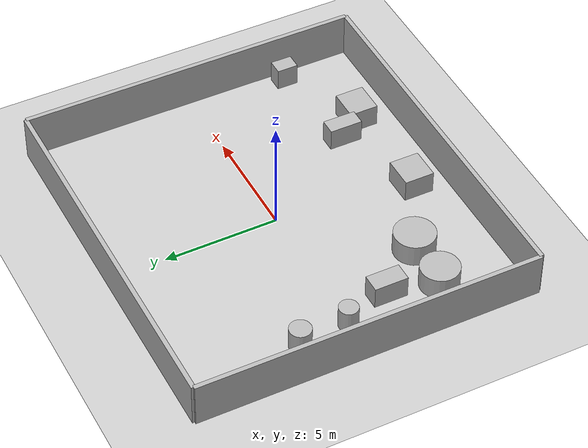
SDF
<?xml version="1.0"?>
<sdf version="1.6">
  <world name="env_45">

    <include><uri>model://ground_plane</uri></include>
    <include><uri>model://sun</uri></include>

    <!-- WALLS -->
    <model name="wall_north"><static>true</static><pose>0 7.544668721564007 1 0 0 0</pose>
      <link name="link"><collision name="collision">
        <geometry><box><size>16.422238055120904 0.2 2</size></box></geometry>
      </collision><visual name="visual">
        <geometry><box><size>16.422238055120904 0.2 2</size></box></geometry>
      </visual></link>
    </model>

    <model name="wall_south"><static>true</static><pose>0 -7.544668721564007 1 0 0 0</pose>
      <link name="link"><collision name="collision">
        <geometry><box><size>16.422238055120904 0.2 2</size></box></geometry>
      </collision><visual name="visual">
        <geometry><box><size>16.422238055120904 0.2 2</size></box></geometry>
      </visual></link>
    </model>

    <model name="wall_east"><static>true</static><pose>8.211119027560452 0 1 0 0 1.57</pose>
      <link name="link"><collision name="collision">
        <geometry><box><size>15.089337443128015 0.2 2</size></box></geometry>
      </collision><visual name="visual">
        <geometry><box><size>15.089337443128015 0.2 2</size></box></geometry>
      </visual></link>
    </model>

    <model name="wall_west"><static>true</static><pose>-8.211119027560452 0 1 0 0 1.57</pose>
      <link name="link"><collision name="collision">
        <geometry><box><size>15.089337443128015 0.2 2</size></box></geometry>
      </collision><visual name="visual">
        <geometry><box><size>15.089337443128015 0.2 2</size></box></geometry>
      </visual></link>
    </model>

    <!-- SENSOR -->

    <model name="lidar_sensor">
      <static>true</static>
      <pose>7.453102257823867 -6.813337682431473 0.4 0 0 0</pose>
      <link name="link">
        <sensor name="lidar" type="ray">
          <pose>0 0 0 0 0 0</pose>
          <visualize>true</visualize>
          <always_on>true</always_on>
          <update_rate>10</update_rate>
          <ray>
            <scan><horizontal>
              <samples>240</samples>
              <resolution>1</resolution>
              <min_angle>-3.14159</min_angle>
              <max_angle>3.14159</max_angle>
            </horizontal></scan>
            <range><min>0.15</min><max>20.0</max><resolution>0.01</resolution></range>
          </ray>
          <plugin name="lidar_plugin" filename="liblidar_plugin.so"/>
        </sensor>
      </link>
    </model>

    <!-- OBSTACLES -->

    <model name="obstacle_0">
      <static>true</static>
      <pose>4.016593146539165 -5.884355125289948 0.5 0 0 0</pose>
      <link name="link">
        <collision name="collision">
          <geometry><box><size>1.37 1.27 1.0</size></box></geometry>
        </collision>
        <visual name="visual">
          <geometry><box><size>1.37 1.27 1.0</size></box></geometry>
        </visual>
      </link>
    </model>

    <model name="obstacle_1">
      <static>true</static>
      <pose>-3.9938365729529006 -4.255279312964937 0.5 0 0 0</pose>
      <link name="link">
        <collision name="collision">
          <geometry><cylinder><radius>0.9</radius><length>1.0</length></cylinder></geometry>
        </collision>
        <visual name="visual">
          <geometry><cylinder><radius>0.9</radius><length>1.0</length></cylinder></geometry>
        </visual>
      </link>
    </model>

    <model name="obstacle_2">
      <static>true</static>
      <pose>3.1280410426992997 -4.738663934882918 0.5 0 0 0</pose>
      <link name="link">
        <collision name="collision">
          <geometry><box><size>0.71 1.46 1.0</size></box></geometry>
        </collision>
        <visual name="visual">
          <geometry><box><size>0.71 1.46 1.0</size></box></geometry>
        </visual>
      </link>
    </model>

    <model name="obstacle_3">
      <static>true</static>
      <pose>-0.6669492374493471 -5.969610169986723 0.5 0 0 0</pose>
      <link name="link">
        <collision name="collision">
          <geometry><box><size>1.37 1.31 1.0</size></box></geometry>
        </collision>
        <visual name="visual">
          <geometry><box><size>1.37 1.31 1.0</size></box></geometry>
        </visual>
      </link>
    </model>

    <model name="obstacle_4">
      <static>true</static>
      <pose>-5.690242487939074 -2.0457681071024103 0.5 0 0 0</pose>
      <link name="link">
        <collision name="collision">
          <geometry><box><size>0.81 1.48 1.0</size></box></geometry>
        </collision>
        <visual name="visual">
          <geometry><box><size>0.81 1.48 1.0</size></box></geometry>
        </visual>
      </link>
    </model>

    <model name="obstacle_5">
      <static>true</static>
      <pose>-6.09600889858022 -4.227108948711534 0.5 0 0 0</pose>
      <link name="link">
        <collision name="collision">
          <geometry><cylinder><radius>0.84</radius><length>1.0</length></cylinder></geometry>
        </collision>
        <visual name="visual">
          <geometry><cylinder><radius>0.84</radius><length>1.0</length></cylinder></geometry>
        </visual>
      </link>
    </model>

    <model name="obstacle_6">
      <static>true</static>
      <pose>7.5626208941943975 -4.211833564519399 0.5 0 0 0</pose>
      <link name="link">
        <collision name="collision">
          <geometry><box><size>0.67 0.93 1.0</size></box></geometry>
        </collision>
        <visual name="visual">
          <geometry><box><size>0.67 0.93 1.0</size></box></geometry>
        </visual>
      </link>
    </model>

    <model name="obstacle_7">
      <static>true</static>
      <pose>-6.568494875023403 2.246903381155719 0.5 0 0 0</pose>
      <link name="link">
        <collision name="collision">
          <geometry><cylinder><radius>0.47</radius><length>1.0</length></cylinder></geometry>
        </collision>
        <visual name="visual">
          <geometry><cylinder><radius>0.47</radius><length>1.0</length></cylinder></geometry>
        </visual>
      </link>
    </model>

    <model name="obstacle_8">
      <static>true</static>
      <pose>-6.413789295770046 0.04892204213711793 0.5 0 0 0</pose>
      <link name="link">
        <collision name="collision">
          <geometry><cylinder><radius>0.42</radius><length>1.0</length></cylinder></geometry>
        </collision>
        <visual name="visual">
          <geometry><cylinder><radius>0.42</radius><length>1.0</length></cylinder></geometry>
        </visual>
      </link>
    </model>

  </world>
</sdf>
